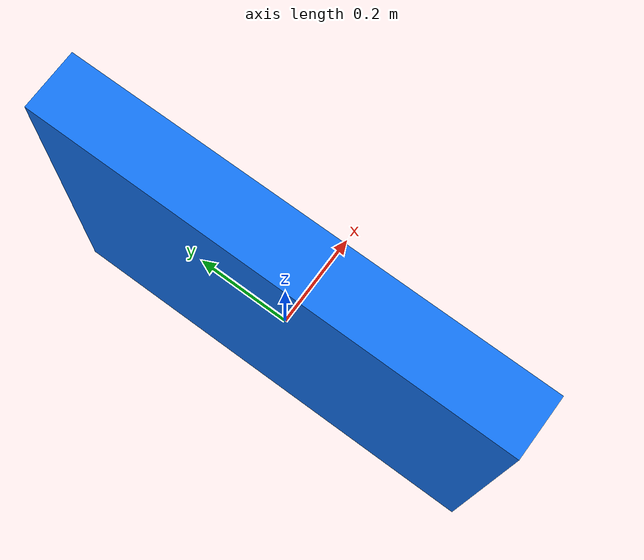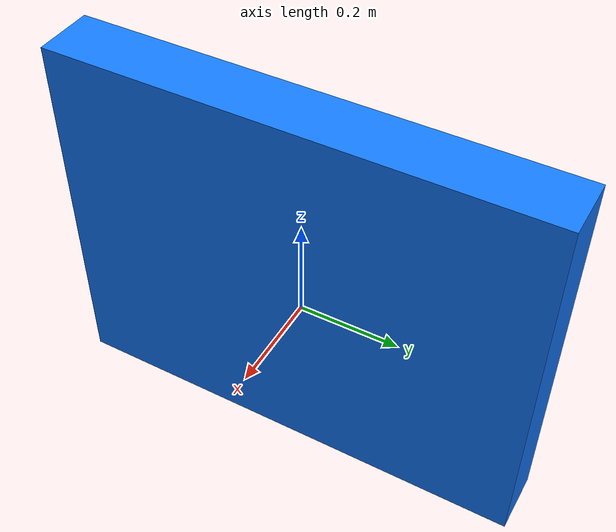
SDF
<?xml version="1.0"?>
<sdf version="1.9">
  <model name="occluder_wall_blue">
    <static>true</static>
    <link name="wall_link">
      <collision name="wall_collision">
        <geometry>
          <box>
            <size>0.10 0.80 0.60</size>
          </box>
        </geometry>
      </collision>
      <visual name="wall_visual">
        <pose>0 0 0.075 0 0 0</pose>
        <geometry>
          <box>
            <size>0.12 0.95 0.75</size>
          </box>
        </geometry>
        <material>
          <ambient>0.05 0.35 0.95 1</ambient>
          <diffuse>0.08 0.48 1.00 1</diffuse>
          <specular>0.02 0.08 0.20 1</specular>
          <emissive>0.00 0.08 0.25 1</emissive>
        </material>
      </visual>
    </link>
  </model>
</sdf>
